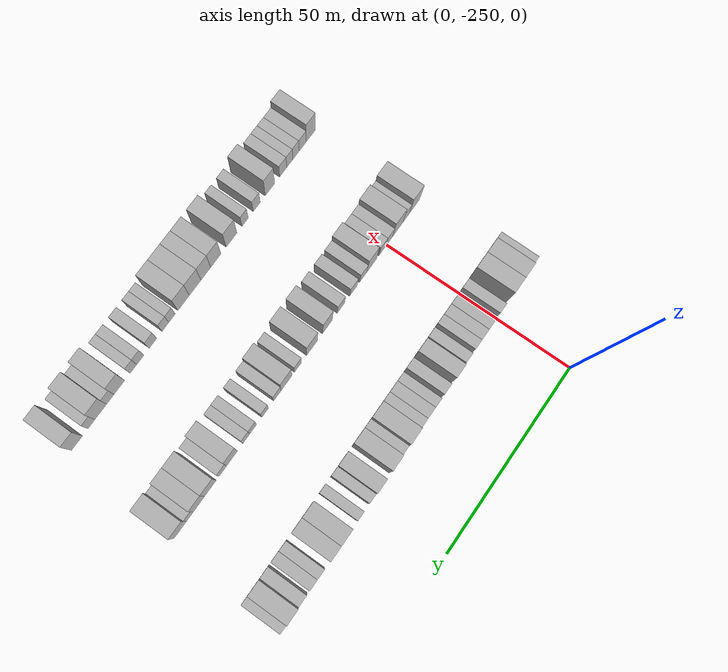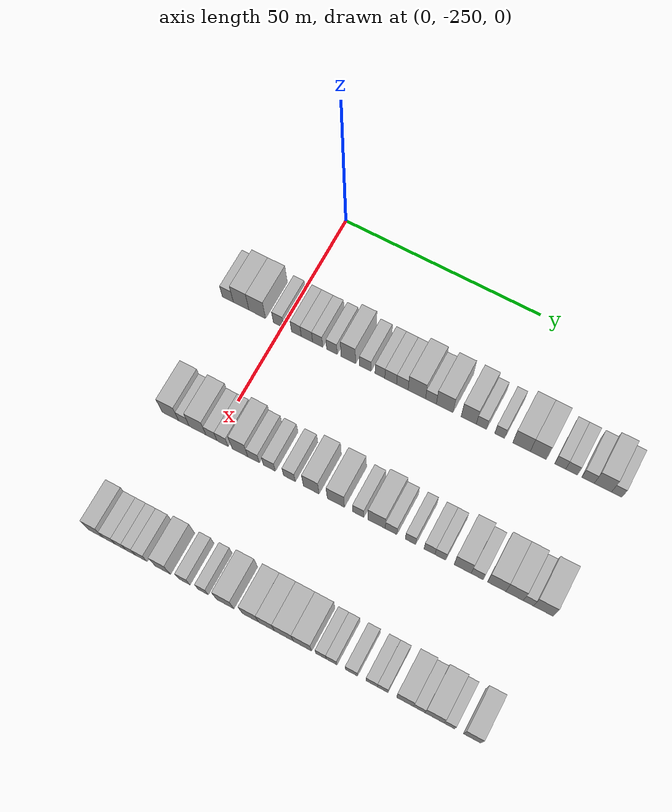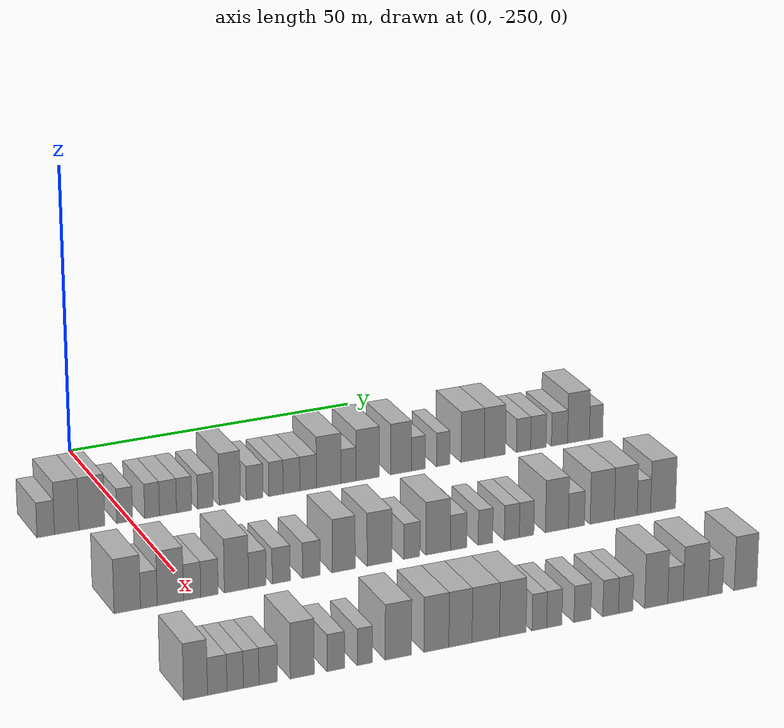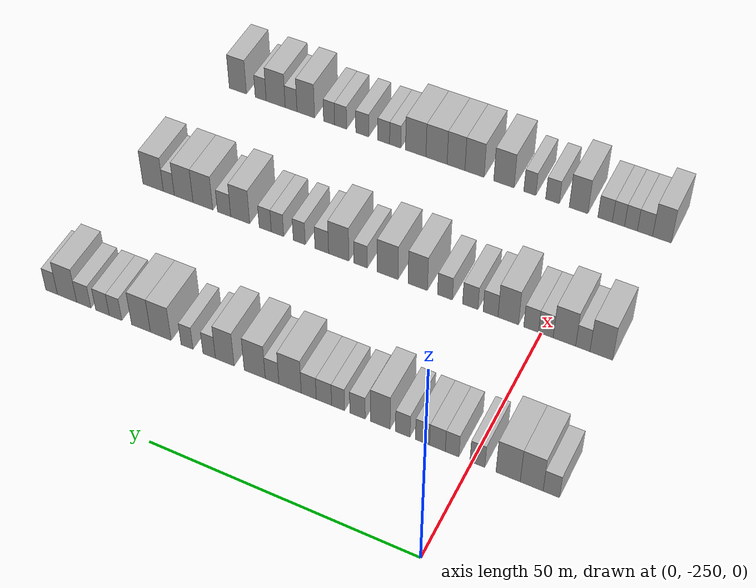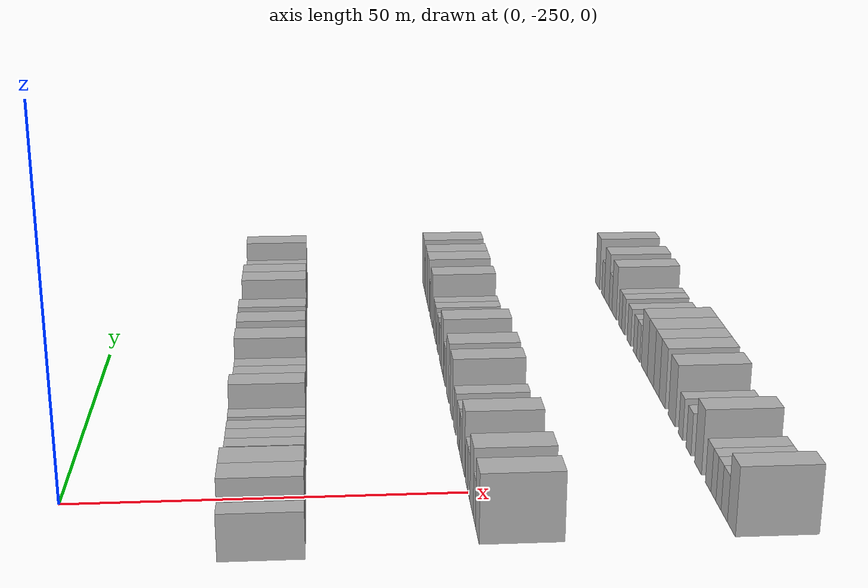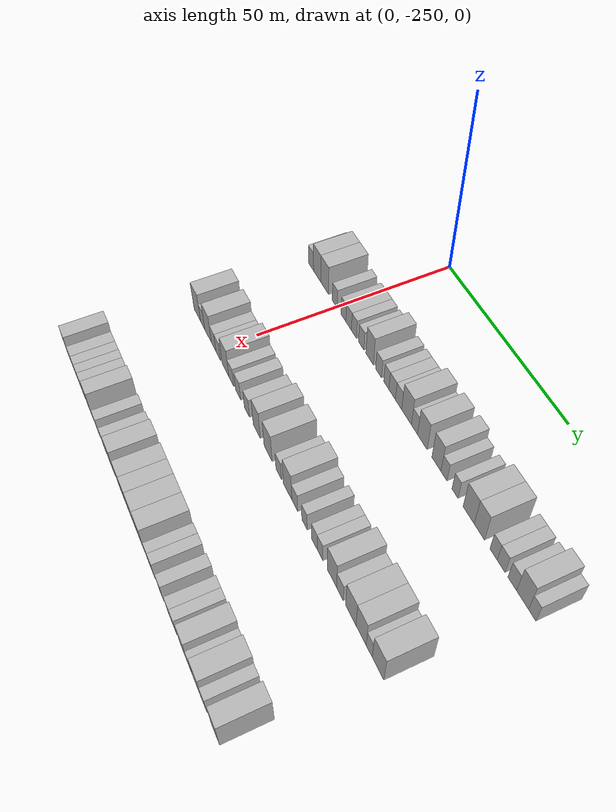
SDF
<sdf version="1.6">
 <world name="default">
  <model name="building_46">
   <static>1</static>
   <pose>25.0000 -264.1485 0 0.000000 0.000000 0.000000</pose>
   <link name="link">
    <pose>0 0 3.00 0 0 0</pose>
    <collision name="collision"><geometry><box><size>10.0000 2.8820 6.0000</size></box></geometry></collision>
    <visual name="visual">
     <cast_shadows>0</cast_shadows>
     <geometry><box><size>10.0000 2.8820 6.0000</size></box></geometry>
     <material>
      <script>
       <uri>model://HANNAS_wall/materials/scripts</uri>
       <uri>model://HANNAS_wall/materials/textures</uri>
       <name>vrc/HANNAS_wall</name>
      </script>
     </material>
    </visual>
   </link>
  </model>
  <model name="building_47">
   <static>1</static>
   <pose>25.0000 -260.6801 0 0.000000 0.000000 0.000000</pose>
   <link name="link">
    <pose>0 0 4.50 0 0 0</pose>
    <collision name="collision"><geometry><box><size>10.0000 4.0547 9.0000</size></box></geometry></collision>
    <visual name="visual">
     <cast_shadows>0</cast_shadows>
     <geometry><box><size>10.0000 4.0547 9.0000</size></box></geometry>
     <material>
      <script>
       <uri>model://HANNAS_wall/materials/scripts</uri>
       <uri>model://HANNAS_wall/materials/textures</uri>
       <name>vrc/HANNAS_wall</name>
      </script>
     </material>
    </visual>
   </link>
  </model>
  <model name="building_48">
   <static>1</static>
   <pose>25.0000 -256.4939 0 0.000000 0.000000 0.000000</pose>
   <link name="link">
    <pose>0 0 4.50 0 0 0</pose>
    <collision name="collision"><geometry><box><size>10.0000 4.3178 9.0000</size></box></geometry></collision>
    <visual name="visual">
     <cast_shadows>0</cast_shadows>
     <geometry><box><size>10.0000 4.3178 9.0000</size></box></geometry>
     <material>
      <script>
       <uri>model://HANNAS_wall/materials/scripts</uri>
       <uri>model://HANNAS_wall/materials/textures</uri>
       <name>vrc/HANNAS_wall</name>
      </script>
     </material>
    </visual>
   </link>
  </model>
  <model name="building_49">
   <static>1</static>
   <pose>25.0000 -250.9897 0 0.000000 0.000000 0.000000</pose>
   <link name="link">
    <pose>0 0 3.00 0 0 0</pose>
    <collision name="collision"><geometry><box><size>10.0000 2.6907 6.0000</size></box></geometry></collision>
    <visual name="visual">
     <cast_shadows>0</cast_shadows>
     <geometry><box><size>10.0000 2.6907 6.0000</size></box></geometry>
     <material>
      <script>
       <uri>model://HANNAS_wall/materials/scripts</uri>
       <uri>model://HANNAS_wall/materials/textures</uri>
       <name>vrc/HANNAS_wall</name>
      </script>
     </material>
    </visual>
   </link>
  </model>
  <model name="building_50">
   <static>1</static>
   <pose>25.0000 -246.4003 0 0.000000 0.000000 0.000000</pose>
   <link name="link">
    <pose>0 0 3.00 0 0 0</pose>
    <collision name="collision"><geometry><box><size>10.0000 2.4881 6.0000</size></box></geometry></collision>
    <visual name="visual">
     <cast_shadows>0</cast_shadows>
     <geometry><box><size>10.0000 2.4881 6.0000</size></box></geometry>
     <material>
      <script>
       <uri>model://HANNAS_wall/materials/scripts</uri>
       <uri>model://HANNAS_wall/materials/textures</uri>
       <name>vrc/HANNAS_wall</name>
      </script>
     </material>
    </visual>
   </link>
  </model>
  <model name="building_51">
   <static>1</static>
   <pose>25.0000 -243.7108 0 0.000000 0.000000 0.000000</pose>
   <link name="link">
    <pose>0 0 3.00 0 0 0</pose>
    <collision name="collision"><geometry><box><size>10.0000 2.8909 6.0000</size></box></geometry></collision>
    <visual name="visual">
     <cast_shadows>0</cast_shadows>
     <geometry><box><size>10.0000 2.8909 6.0000</size></box></geometry>
     <material>
      <script>
       <uri>model://HANNAS_wall/materials/scripts</uri>
       <uri>model://HANNAS_wall/materials/textures</uri>
       <name>vrc/HANNAS_wall</name>
      </script>
     </material>
    </visual>
   </link>
  </model>
  <model name="building_52">
   <static>1</static>
   <pose>25.0000 -240.9700 0 0.000000 0.000000 0.000000</pose>
   <link name="link">
    <pose>0 0 3.00 0 0 0</pose>
    <collision name="collision"><geometry><box><size>10.0000 2.5906 6.0000</size></box></geometry></collision>
    <visual name="visual">
     <cast_shadows>0</cast_shadows>
     <geometry><box><size>10.0000 2.5906 6.0000</size></box></geometry>
     <material>
      <script>
       <uri>model://HANNAS_wall/materials/scripts</uri>
       <uri>model://HANNAS_wall/materials/textures</uri>
       <name>vrc/HANNAS_wall</name>
      </script>
     </material>
    </visual>
   </link>
  </model>
  <model name="building_53">
   <static>1</static>
   <pose>25.0000 -237.3299 0 0.000000 0.000000 0.000000</pose>
   <link name="link">
    <pose>0 0 3.00 0 0 0</pose>
    <collision name="collision"><geometry><box><size>10.0000 2.6897 6.0000</size></box></geometry></collision>
    <visual name="visual">
     <cast_shadows>0</cast_shadows>
     <geometry><box><size>10.0000 2.6897 6.0000</size></box></geometry>
     <material>
      <script>
       <uri>model://HANNAS_wall/materials/scripts</uri>
       <uri>model://HANNAS_wall/materials/textures</uri>
       <name>vrc/HANNAS_wall</name>
      </script>
     </material>
    </visual>
   </link>
  </model>
  <model name="building_54">
   <static>1</static>
   <pose>25.0000 -233.1575 0 0.000000 0.000000 0.000000</pose>
   <link name="link">
    <pose>0 0 4.50 0 0 0</pose>
    <collision name="collision"><geometry><box><size>10.0000 3.6551 9.0000</size></box></geometry></collision>
    <visual name="visual">
     <cast_shadows>0</cast_shadows>
     <geometry><box><size>10.0000 3.6551 9.0000</size></box></geometry>
     <material>
      <script>
       <uri>model://HANNAS_wall/materials/scripts</uri>
       <uri>model://HANNAS_wall/materials/textures</uri>
       <name>vrc/HANNAS_wall</name>
      </script>
     </material>
    </visual>
   </link>
  </model>
  <model name="building_55">
   <static>1</static>
   <pose>25.0000 -228.8805 0 0.000000 0.000000 0.000000</pose>
   <link name="link">
    <pose>0 0 3.00 0 0 0</pose>
    <collision name="collision"><geometry><box><size>10.0000 2.8989 6.0000</size></box></geometry></collision>
    <visual name="visual">
     <cast_shadows>0</cast_shadows>
     <geometry><box><size>10.0000 2.8989 6.0000</size></box></geometry>
     <material>
      <script>
       <uri>model://HANNAS_wall/materials/scripts</uri>
       <uri>model://HANNAS_wall/materials/textures</uri>
       <name>vrc/HANNAS_wall</name>
      </script>
     </material>
    </visual>
   </link>
  </model>
  <model name="building_56">
   <static>1</static>
   <pose>25.0000 -225.2033 0 0.000000 0.000000 0.000000</pose>
   <link name="link">
    <pose>0 0 3.00 0 0 0</pose>
    <collision name="collision"><geometry><box><size>10.0000 2.4555 6.0000</size></box></geometry></collision>
    <visual name="visual">
     <cast_shadows>0</cast_shadows>
     <geometry><box><size>10.0000 2.4555 6.0000</size></box></geometry>
     <material>
      <script>
       <uri>model://HANNAS_wall/materials/scripts</uri>
       <uri>model://HANNAS_wall/materials/textures</uri>
       <name>vrc/HANNAS_wall</name>
      </script>
     </material>
    </visual>
   </link>
  </model>
  <model name="building_57">
   <static>1</static>
   <pose>25.0000 -222.5029 0 0.000000 0.000000 0.000000</pose>
   <link name="link">
    <pose>0 0 3.00 0 0 0</pose>
    <collision name="collision"><geometry><box><size>10.0000 2.9454 6.0000</size></box></geometry></collision>
    <visual name="visual">
     <cast_shadows>0</cast_shadows>
     <geometry><box><size>10.0000 2.9454 6.0000</size></box></geometry>
     <material>
      <script>
       <uri>model://HANNAS_wall/materials/scripts</uri>
       <uri>model://HANNAS_wall/materials/textures</uri>
       <name>vrc/HANNAS_wall</name>
      </script>
     </material>
    </visual>
   </link>
  </model>
  <model name="building_58">
   <static>1</static>
   <pose>25.0000 -219.5886 0 0.000000 0.000000 0.000000</pose>
   <link name="link">
    <pose>0 0 3.00 0 0 0</pose>
    <collision name="collision"><geometry><box><size>10.0000 2.8831 6.0000</size></box></geometry></collision>
    <visual name="visual">
     <cast_shadows>0</cast_shadows>
     <geometry><box><size>10.0000 2.8831 6.0000</size></box></geometry>
     <material>
      <script>
       <uri>model://HANNAS_wall/materials/scripts</uri>
       <uri>model://HANNAS_wall/materials/textures</uri>
       <name>vrc/HANNAS_wall</name>
      </script>
     </material>
    </visual>
   </link>
  </model>
  <model name="building_59">
   <static>1</static>
   <pose>25.0000 -215.9863 0 0.000000 0.000000 0.000000</pose>
   <link name="link">
    <pose>0 0 4.50 0 0 0</pose>
    <collision name="collision"><geometry><box><size>10.0000 4.3215 9.0000</size></box></geometry></collision>
    <visual name="visual">
     <cast_shadows>0</cast_shadows>
     <geometry><box><size>10.0000 4.3215 9.0000</size></box></geometry>
     <material>
      <script>
       <uri>model://HANNAS_wall/materials/scripts</uri>
       <uri>model://HANNAS_wall/materials/textures</uri>
       <name>vrc/HANNAS_wall</name>
      </script>
     </material>
    </visual>
   </link>
  </model>
  <model name="building_60">
   <static>1</static>
   <pose>25.0000 -212.4923 0 0.000000 0.000000 0.000000</pose>
   <link name="link">
    <pose>0 0 3.00 0 0 0</pose>
    <collision name="collision"><geometry><box><size>10.0000 2.6666 6.0000</size></box></geometry></collision>
    <visual name="visual">
     <cast_shadows>0</cast_shadows>
     <geometry><box><size>10.0000 2.6666 6.0000</size></box></geometry>
     <material>
      <script>
       <uri>model://HANNAS_wall/materials/scripts</uri>
       <uri>model://HANNAS_wall/materials/textures</uri>
       <name>vrc/HANNAS_wall</name>
      </script>
     </material>
    </visual>
   </link>
  </model>
  <model name="building_61">
   <static>1</static>
   <pose>25.0000 -209.0962 0 0.000000 0.000000 0.000000</pose>
   <link name="link">
    <pose>0 0 4.50 0 0 0</pose>
    <collision name="collision"><geometry><box><size>10.0000 4.1255 9.0000</size></box></geometry></collision>
    <visual name="visual">
     <cast_shadows>0</cast_shadows>
     <geometry><box><size>10.0000 4.1255 9.0000</size></box></geometry>
     <material>
      <script>
       <uri>model://HANNAS_wall/materials/scripts</uri>
       <uri>model://HANNAS_wall/materials/textures</uri>
       <name>vrc/HANNAS_wall</name>
      </script>
     </material>
    </visual>
   </link>
  </model>
  <model name="building_62">
   <static>1</static>
   <pose>25.0000 -203.1791 0 0.000000 0.000000 0.000000</pose>
   <link name="link">
    <pose>0 0 4.50 0 0 0</pose>
    <collision name="collision"><geometry><box><size>10.0000 3.7088 9.0000</size></box></geometry></collision>
    <visual name="visual">
     <cast_shadows>0</cast_shadows>
     <geometry><box><size>10.0000 3.7088 9.0000</size></box></geometry>
     <material>
      <script>
       <uri>model://HANNAS_wall/materials/scripts</uri>
       <uri>model://HANNAS_wall/materials/textures</uri>
       <name>vrc/HANNAS_wall</name>
      </script>
     </material>
    </visual>
   </link>
  </model>
  <model name="building_63">
   <static>1</static>
   <pose>25.0000 -200.0745 0 0.000000 0.000000 0.000000</pose>
   <link name="link">
    <pose>0 0 3.00 0 0 0</pose>
    <collision name="collision"><geometry><box><size>10.0000 2.5003 6.0000</size></box></geometry></collision>
    <visual name="visual">
     <cast_shadows>0</cast_shadows>
     <geometry><box><size>10.0000 2.5003 6.0000</size></box></geometry>
     <material>
      <script>
       <uri>model://HANNAS_wall/materials/scripts</uri>
       <uri>model://HANNAS_wall/materials/textures</uri>
       <name>vrc/HANNAS_wall</name>
      </script>
     </material>
    </visual>
   </link>
  </model>
  <model name="building_64">
   <static>1</static>
   <pose>25.0000 -195.6227 0 0.000000 0.000000 0.000000</pose>
   <link name="link">
    <pose>0 0 3.00 0 0 0</pose>
    <collision name="collision"><geometry><box><size>10.0000 2.4034 6.0000</size></box></geometry></collision>
    <visual name="visual">
     <cast_shadows>0</cast_shadows>
     <geometry><box><size>10.0000 2.4034 6.0000</size></box></geometry>
     <material>
      <script>
       <uri>model://HANNAS_wall/materials/scripts</uri>
       <uri>model://HANNAS_wall/materials/textures</uri>
       <name>vrc/HANNAS_wall</name>
      </script>
     </material>
    </visual>
   </link>
  </model>
  <model name="building_65">
   <static>1</static>
   <pose>25.0000 -190.3028 0 0.000000 0.000000 0.000000</pose>
   <link name="link">
    <pose>0 0 4.50 0 0 0</pose>
    <collision name="collision"><geometry><box><size>10.0000 4.2364 9.0000</size></box></geometry></collision>
    <visual name="visual">
     <cast_shadows>0</cast_shadows>
     <geometry><box><size>10.0000 4.2364 9.0000</size></box></geometry>
     <material>
      <script>
       <uri>model://HANNAS_wall/materials/scripts</uri>
       <uri>model://HANNAS_wall/materials/textures</uri>
       <name>vrc/HANNAS_wall</name>
      </script>
     </material>
    </visual>
   </link>
  </model>
  <model name="building_66">
   <static>1</static>
   <pose>25.0000 -186.2485 0 0.000000 0.000000 0.000000</pose>
   <link name="link">
    <pose>0 0 4.50 0 0 0</pose>
    <collision name="collision"><geometry><box><size>10.0000 3.8721 9.0000</size></box></geometry></collision>
    <visual name="visual">
     <cast_shadows>0</cast_shadows>
     <geometry><box><size>10.0000 3.8721 9.0000</size></box></geometry>
     <material>
      <script>
       <uri>model://HANNAS_wall/materials/scripts</uri>
       <uri>model://HANNAS_wall/materials/textures</uri>
       <name>vrc/HANNAS_wall</name>
      </script>
     </material>
    </visual>
   </link>
  </model>
  <model name="building_67">
   <static>1</static>
   <pose>25.0000 -181.0023 0 0.000000 0.000000 0.000000</pose>
   <link name="link">
    <pose>0 0 3.00 0 0 0</pose>
    <collision name="collision"><geometry><box><size>10.0000 2.6203 6.0000</size></box></geometry></collision>
    <visual name="visual">
     <cast_shadows>0</cast_shadows>
     <geometry><box><size>10.0000 2.6203 6.0000</size></box></geometry>
     <material>
      <script>
       <uri>model://HANNAS_wall/materials/scripts</uri>
       <uri>model://HANNAS_wall/materials/textures</uri>
       <name>vrc/HANNAS_wall</name>
      </script>
     </material>
    </visual>
   </link>
  </model>
  <model name="building_68">
   <static>1</static>
   <pose>25.0000 -178.2795 0 0.000000 0.000000 0.000000</pose>
   <link name="link">
    <pose>0 0 3.00 0 0 0</pose>
    <collision name="collision"><geometry><box><size>10.0000 2.8252 6.0000</size></box></geometry></collision>
    <visual name="visual">
     <cast_shadows>0</cast_shadows>
     <geometry><box><size>10.0000 2.8252 6.0000</size></box></geometry>
     <material>
      <script>
       <uri>model://HANNAS_wall/materials/scripts</uri>
       <uri>model://HANNAS_wall/materials/textures</uri>
       <name>vrc/HANNAS_wall</name>
      </script>
     </material>
    </visual>
   </link>
  </model>
  <model name="building_69">
   <static>1</static>
   <pose>25.0000 -174.3750 0 0.000000 0.000000 0.000000</pose>
   <link name="link">
    <pose>0 0 3.00 0 0 0</pose>
    <collision name="collision"><geometry><box><size>10.0000 2.9838 6.0000</size></box></geometry></collision>
    <visual name="visual">
     <cast_shadows>0</cast_shadows>
     <geometry><box><size>10.0000 2.9838 6.0000</size></box></geometry>
     <material>
      <script>
       <uri>model://HANNAS_wall/materials/scripts</uri>
       <uri>model://HANNAS_wall/materials/textures</uri>
       <name>vrc/HANNAS_wall</name>
      </script>
     </material>
    </visual>
   </link>
  </model>
  <model name="building_70">
   <static>1</static>
   <pose>25.0000 -170.8474 0 0.000000 0.000000 0.000000</pose>
   <link name="link">
    <pose>0 0 4.50 0 0 0</pose>
    <collision name="collision"><geometry><box><size>10.0000 4.0714 9.0000</size></box></geometry></collision>
    <visual name="visual">
     <cast_shadows>0</cast_shadows>
     <geometry><box><size>10.0000 4.0714 9.0000</size></box></geometry>
     <material>
      <script>
       <uri>model://HANNAS_wall/materials/scripts</uri>
       <uri>model://HANNAS_wall/materials/textures</uri>
       <name>vrc/HANNAS_wall</name>
      </script>
     </material>
    </visual>
   </link>
  </model>
  <model name="building_71">
   <static>1</static>
   <pose>25.0000 -167.5744 0 0.000000 0.000000 0.000000</pose>
   <link name="link">
    <pose>0 0 3.00 0 0 0</pose>
    <collision name="collision"><geometry><box><size>10.0000 2.4747 6.0000</size></box></geometry></collision>
    <visual name="visual">
     <cast_shadows>0</cast_shadows>
     <geometry><box><size>10.0000 2.4747 6.0000</size></box></geometry>
     <material>
      <script>
       <uri>model://HANNAS_wall/materials/scripts</uri>
       <uri>model://HANNAS_wall/materials/textures</uri>
       <name>vrc/HANNAS_wall</name>
      </script>
     </material>
    </visual>
   </link>
  </model>
  <model name="building_279">
   <static>1</static>
   <pose>55.0000 -261.2623 0 0.000000 0.000000 0.000000</pose>
   <link name="link">
    <pose>0 0 4.50 0 0 0</pose>
    <collision name="collision"><geometry><box><size>10.0000 4.2170 9.0000</size></box></geometry></collision>
    <visual name="visual">
     <cast_shadows>0</cast_shadows>
     <geometry><box><size>10.0000 4.2170 9.0000</size></box></geometry>
     <material>
      <script>
       <uri>model://HANNAS_wall/materials/scripts</uri>
       <uri>model://HANNAS_wall/materials/textures</uri>
       <name>vrc/HANNAS_wall</name>
      </script>
     </material>
    </visual>
   </link>
  </model>
  <model name="building_280">
   <static>1</static>
   <pose>55.0000 -257.8210 0 0.000000 0.000000 0.000000</pose>
   <link name="link">
    <pose>0 0 3.00 0 0 0</pose>
    <collision name="collision"><geometry><box><size>10.0000 2.6657 6.0000</size></box></geometry></collision>
    <visual name="visual">
     <cast_shadows>0</cast_shadows>
     <geometry><box><size>10.0000 2.6657 6.0000</size></box></geometry>
     <material>
      <script>
       <uri>model://HANNAS_wall/materials/scripts</uri>
       <uri>model://HANNAS_wall/materials/textures</uri>
       <name>vrc/HANNAS_wall</name>
      </script>
     </material>
    </visual>
   </link>
  </model>
  <model name="building_281">
   <static>1</static>
   <pose>55.0000 -254.3744 0 0.000000 0.000000 0.000000</pose>
   <link name="link">
    <pose>0 0 4.50 0 0 0</pose>
    <collision name="collision"><geometry><box><size>10.0000 4.2275 9.0000</size></box></geometry></collision>
    <visual name="visual">
     <cast_shadows>0</cast_shadows>
     <geometry><box><size>10.0000 4.2275 9.0000</size></box></geometry>
     <material>
      <script>
       <uri>model://HANNAS_wall/materials/scripts</uri>
       <uri>model://HANNAS_wall/materials/textures</uri>
       <name>vrc/HANNAS_wall</name>
      </script>
     </material>
    </visual>
   </link>
  </model>
  <model name="building_282">
   <static>1</static>
   <pose>55.0000 -250.8717 0 0.000000 0.000000 0.000000</pose>
   <link name="link">
    <pose>0 0 3.00 0 0 0</pose>
    <collision name="collision"><geometry><box><size>10.0000 2.7778 6.0000</size></box></geometry></collision>
    <visual name="visual">
     <cast_shadows>0</cast_shadows>
     <geometry><box><size>10.0000 2.7778 6.0000</size></box></geometry>
     <material>
      <script>
       <uri>model://HANNAS_wall/materials/scripts</uri>
       <uri>model://HANNAS_wall/materials/textures</uri>
       <name>vrc/HANNAS_wall</name>
      </script>
     </material>
    </visual>
   </link>
  </model>
  <model name="building_283">
   <static>1</static>
   <pose>55.0000 -248.0734 0 0.000000 0.000000 0.000000</pose>
   <link name="link">
    <pose>0 0 3.00 0 0 0</pose>
    <collision name="collision"><geometry><box><size>10.0000 2.8190 6.0000</size></box></geometry></collision>
    <visual name="visual">
     <cast_shadows>0</cast_shadows>
     <geometry><box><size>10.0000 2.8190 6.0000</size></box></geometry>
     <material>
      <script>
       <uri>model://HANNAS_wall/materials/scripts</uri>
       <uri>model://HANNAS_wall/materials/textures</uri>
       <name>vrc/HANNAS_wall</name>
      </script>
     </material>
    </visual>
   </link>
  </model>
  <model name="building_284">
   <static>1</static>
   <pose>55.0000 -243.6945 0 0.000000 0.000000 0.000000</pose>
   <link name="link">
    <pose>0 0 4.50 0 0 0</pose>
    <collision name="collision"><geometry><box><size>10.0000 3.9387 9.0000</size></box></geometry></collision>
    <visual name="visual">
     <cast_shadows>0</cast_shadows>
     <geometry><box><size>10.0000 3.9387 9.0000</size></box></geometry>
     <material>
      <script>
       <uri>model://HANNAS_wall/materials/scripts</uri>
       <uri>model://HANNAS_wall/materials/textures</uri>
       <name>vrc/HANNAS_wall</name>
      </script>
     </material>
    </visual>
   </link>
  </model>
  <model name="building_285">
   <static>1</static>
   <pose>55.0000 -240.2869 0 0.000000 0.000000 0.000000</pose>
   <link name="link">
    <pose>0 0 3.00 0 0 0</pose>
    <collision name="collision"><geometry><box><size>10.0000 2.8766 6.0000</size></box></geometry></collision>
    <visual name="visual">
     <cast_shadows>0</cast_shadows>
     <geometry><box><size>10.0000 2.8766 6.0000</size></box></geometry>
     <material>
      <script>
       <uri>model://HANNAS_wall/materials/scripts</uri>
       <uri>model://HANNAS_wall/materials/textures</uri>
       <name>vrc/HANNAS_wall</name>
      </script>
     </material>
    </visual>
   </link>
  </model>
  <model name="building_286">
   <static>1</static>
   <pose>55.0000 -236.3550 0 0.000000 0.000000 0.000000</pose>
   <link name="link">
    <pose>0 0 3.00 0 0 0</pose>
    <collision name="collision"><geometry><box><size>10.0000 2.9872 6.0000</size></box></geometry></collision>
    <visual name="visual">
     <cast_shadows>0</cast_shadows>
     <geometry><box><size>10.0000 2.9872 6.0000</size></box></geometry>
     <material>
      <script>
       <uri>model://HANNAS_wall/materials/scripts</uri>
       <uri>model://HANNAS_wall/materials/textures</uri>
       <name>vrc/HANNAS_wall</name>
      </script>
     </material>
    </visual>
   </link>
  </model>
  <model name="building_287">
   <static>1</static>
   <pose>55.0000 -231.3981 0 0.000000 0.000000 0.000000</pose>
   <link name="link">
    <pose>0 0 3.00 0 0 0</pose>
    <collision name="collision"><geometry><box><size>10.0000 2.9266 6.0000</size></box></geometry></collision>
    <visual name="visual">
     <cast_shadows>0</cast_shadows>
     <geometry><box><size>10.0000 2.9266 6.0000</size></box></geometry>
     <material>
      <script>
       <uri>model://HANNAS_wall/materials/scripts</uri>
       <uri>model://HANNAS_wall/materials/textures</uri>
       <name>vrc/HANNAS_wall</name>
      </script>
     </material>
    </visual>
   </link>
  </model>
  <model name="building_288">
   <static>1</static>
   <pose>55.0000 -226.0126 0 0.000000 0.000000 0.000000</pose>
   <link name="link">
    <pose>0 0 4.50 0 0 0</pose>
    <collision name="collision"><geometry><box><size>10.0000 3.8443 9.0000</size></box></geometry></collision>
    <visual name="visual">
     <cast_shadows>0</cast_shadows>
     <geometry><box><size>10.0000 3.8443 9.0000</size></box></geometry>
     <material>
      <script>
       <uri>model://HANNAS_wall/materials/scripts</uri>
       <uri>model://HANNAS_wall/materials/textures</uri>
       <name>vrc/HANNAS_wall</name>
      </script>
     </material>
    </visual>
   </link>
  </model>
  <model name="building_289">
   <static>1</static>
   <pose>55.0000 -219.9965 0 0.000000 0.000000 0.000000</pose>
   <link name="link">
    <pose>0 0 4.50 0 0 0</pose>
    <collision name="collision"><geometry><box><size>10.0000 4.1879 9.0000</size></box></geometry></collision>
    <visual name="visual">
     <cast_shadows>0</cast_shadows>
     <geometry><box><size>10.0000 4.1879 9.0000</size></box></geometry>
     <material>
      <script>
       <uri>model://HANNAS_wall/materials/scripts</uri>
       <uri>model://HANNAS_wall/materials/textures</uri>
       <name>vrc/HANNAS_wall</name>
      </script>
     </material>
    </visual>
   </link>
  </model>
  <model name="building_290">
   <static>1</static>
   <pose>55.0000 -214.5371 0 0.000000 0.000000 0.000000</pose>
   <link name="link">
    <pose>0 0 3.00 0 0 0</pose>
    <collision name="collision"><geometry><box><size>10.0000 2.7311 6.0000</size></box></geometry></collision>
    <visual name="visual">
     <cast_shadows>0</cast_shadows>
     <geometry><box><size>10.0000 2.7311 6.0000</size></box></geometry>
     <material>
      <script>
       <uri>model://HANNAS_wall/materials/scripts</uri>
       <uri>model://HANNAS_wall/materials/textures</uri>
       <name>vrc/HANNAS_wall</name>
      </script>
     </material>
    </visual>
   </link>
  </model>
  <model name="building_291">
   <static>1</static>
   <pose>55.0000 -210.0919 0 0.000000 0.000000 0.000000</pose>
   <link name="link">
    <pose>0 0 4.50 0 0 0</pose>
    <collision name="collision"><geometry><box><size>10.0000 4.1593 9.0000</size></box></geometry></collision>
    <visual name="visual">
     <cast_shadows>0</cast_shadows>
     <geometry><box><size>10.0000 4.1593 9.0000</size></box></geometry>
     <material>
      <script>
       <uri>model://HANNAS_wall/materials/scripts</uri>
       <uri>model://HANNAS_wall/materials/textures</uri>
       <name>vrc/HANNAS_wall</name>
      </script>
     </material>
    </visual>
   </link>
  </model>
  <model name="building_292">
   <static>1</static>
   <pose>55.0000 -206.6073 0 0.000000 0.000000 0.000000</pose>
   <link name="link">
    <pose>0 0 3.00 0 0 0</pose>
    <collision name="collision"><geometry><box><size>10.0000 2.8098 6.0000</size></box></geometry></collision>
    <visual name="visual">
     <cast_shadows>0</cast_shadows>
     <geometry><box><size>10.0000 2.8098 6.0000</size></box></geometry>
     <material>
      <script>
       <uri>model://HANNAS_wall/materials/scripts</uri>
       <uri>model://HANNAS_wall/materials/textures</uri>
       <name>vrc/HANNAS_wall</name>
      </script>
     </material>
    </visual>
   </link>
  </model>
  <model name="building_293">
   <static>1</static>
   <pose>55.0000 -201.9544 0 0.000000 0.000000 0.000000</pose>
   <link name="link">
    <pose>0 0 3.00 0 0 0</pose>
    <collision name="collision"><geometry><box><size>10.0000 2.4960 6.0000</size></box></geometry></collision>
    <visual name="visual">
     <cast_shadows>0</cast_shadows>
     <geometry><box><size>10.0000 2.4960 6.0000</size></box></geometry>
     <material>
      <script>
       <uri>model://HANNAS_wall/materials/scripts</uri>
       <uri>model://HANNAS_wall/materials/textures</uri>
       <name>vrc/HANNAS_wall</name>
      </script>
     </material>
    </visual>
   </link>
  </model>
  <model name="building_294">
   <static>1</static>
   <pose>55.0000 -197.4063 0 0.000000 0.000000 0.000000</pose>
   <link name="link">
    <pose>0 0 3.00 0 0 0</pose>
    <collision name="collision"><geometry><box><size>10.0000 2.6002 6.0000</size></box></geometry></collision>
    <visual name="visual">
     <cast_shadows>0</cast_shadows>
     <geometry><box><size>10.0000 2.6002 6.0000</size></box></geometry>
     <material>
      <script>
       <uri>model://HANNAS_wall/materials/scripts</uri>
       <uri>model://HANNAS_wall/materials/textures</uri>
       <name>vrc/HANNAS_wall</name>
      </script>
     </material>
    </visual>
   </link>
  </model>
  <model name="building_295">
   <static>1</static>
   <pose>55.0000 -194.8317 0 0.000000 0.000000 0.000000</pose>
   <link name="link">
    <pose>0 0 3.00 0 0 0</pose>
    <collision name="collision"><geometry><box><size>10.0000 2.5490 6.0000</size></box></geometry></collision>
    <visual name="visual">
     <cast_shadows>0</cast_shadows>
     <geometry><box><size>10.0000 2.5490 6.0000</size></box></geometry>
     <material>
      <script>
       <uri>model://HANNAS_wall/materials/scripts</uri>
       <uri>model://HANNAS_wall/materials/textures</uri>
       <name>vrc/HANNAS_wall</name>
      </script>
     </material>
    </visual>
   </link>
  </model>
  <model name="building_296">
   <static>1</static>
   <pose>55.0000 -189.5440 0 0.000000 0.000000 0.000000</pose>
   <link name="link">
    <pose>0 0 4.50 0 0 0</pose>
    <collision name="collision"><geometry><box><size>10.0000 4.0264 9.0000</size></box></geometry></collision>
    <visual name="visual">
     <cast_shadows>0</cast_shadows>
     <geometry><box><size>10.0000 4.0264 9.0000</size></box></geometry>
     <material>
      <script>
       <uri>model://HANNAS_wall/materials/scripts</uri>
       <uri>model://HANNAS_wall/materials/textures</uri>
       <name>vrc/HANNAS_wall</name>
      </script>
     </material>
    </visual>
   </link>
  </model>
  <model name="building_297">
   <static>1</static>
   <pose>55.0000 -186.1114 0 0.000000 0.000000 0.000000</pose>
   <link name="link">
    <pose>0 0 3.00 0 0 0</pose>
    <collision name="collision"><geometry><box><size>10.0000 2.8388 6.0000</size></box></geometry></collision>
    <visual name="visual">
     <cast_shadows>0</cast_shadows>
     <geometry><box><size>10.0000 2.8388 6.0000</size></box></geometry>
     <material>
      <script>
       <uri>model://HANNAS_wall/materials/scripts</uri>
       <uri>model://HANNAS_wall/materials/textures</uri>
       <name>vrc/HANNAS_wall</name>
      </script>
     </material>
    </visual>
   </link>
  </model>
  <model name="building_298">
   <static>1</static>
   <pose>55.0000 -181.5488 0 0.000000 0.000000 0.000000</pose>
   <link name="link">
    <pose>0 0 4.50 0 0 0</pose>
    <collision name="collision"><geometry><box><size>10.0000 4.2865 9.0000</size></box></geometry></collision>
    <visual name="visual">
     <cast_shadows>0</cast_shadows>
     <geometry><box><size>10.0000 4.2865 9.0000</size></box></geometry>
     <material>
      <script>
       <uri>model://HANNAS_wall/materials/scripts</uri>
       <uri>model://HANNAS_wall/materials/textures</uri>
       <name>vrc/HANNAS_wall</name>
      </script>
     </material>
    </visual>
   </link>
  </model>
  <model name="building_299">
   <static>1</static>
   <pose>55.0000 -177.3813 0 0.000000 0.000000 0.000000</pose>
   <link name="link">
    <pose>0 0 4.50 0 0 0</pose>
    <collision name="collision"><geometry><box><size>10.0000 4.0484 9.0000</size></box></geometry></collision>
    <visual name="visual">
     <cast_shadows>0</cast_shadows>
     <geometry><box><size>10.0000 4.0484 9.0000</size></box></geometry>
     <material>
      <script>
       <uri>model://HANNAS_wall/materials/scripts</uri>
       <uri>model://HANNAS_wall/materials/textures</uri>
       <name>vrc/HANNAS_wall</name>
      </script>
     </material>
    </visual>
   </link>
  </model>
  <model name="building_300">
   <static>1</static>
   <pose>55.0000 -174.1530 0 0.000000 0.000000 0.000000</pose>
   <link name="link">
    <pose>0 0 3.00 0 0 0</pose>
    <collision name="collision"><geometry><box><size>10.0000 2.4083 6.0000</size></box></geometry></collision>
    <visual name="visual">
     <cast_shadows>0</cast_shadows>
     <geometry><box><size>10.0000 2.4083 6.0000</size></box></geometry>
     <material>
      <script>
       <uri>model://HANNAS_wall/materials/scripts</uri>
       <uri>model://HANNAS_wall/materials/textures</uri>
       <name>vrc/HANNAS_wall</name>
      </script>
     </material>
    </visual>
   </link>
  </model>
  <model name="building_301">
   <static>1</static>
   <pose>55.0000 -170.7024 0 0.000000 0.000000 0.000000</pose>
   <link name="link">
    <pose>0 0 4.50 0 0 0</pose>
    <collision name="collision"><geometry><box><size>10.0000 4.4929 9.0000</size></box></geometry></collision>
    <visual name="visual">
     <cast_shadows>0</cast_shadows>
     <geometry><box><size>10.0000 4.4929 9.0000</size></box></geometry>
     <material>
      <script>
       <uri>model://HANNAS_wall/materials/scripts</uri>
       <uri>model://HANNAS_wall/materials/textures</uri>
       <name>vrc/HANNAS_wall</name>
      </script>
     </material>
    </visual>
   </link>
  </model>
  <model name="building_526">
   <static>1</static>
   <pose>85.0000 -261.6350 0 0.000000 0.000000 0.000000</pose>
   <link name="link">
    <pose>0 0 4.50 0 0 0</pose>
    <collision name="collision"><geometry><box><size>10.0000 3.6424 9.0000</size></box></geometry></collision>
    <visual name="visual">
     <cast_shadows>0</cast_shadows>
     <geometry><box><size>10.0000 3.6424 9.0000</size></box></geometry>
     <material>
      <script>
       <uri>model://HANNAS_wall/materials/scripts</uri>
       <uri>model://HANNAS_wall/materials/textures</uri>
       <name>vrc/HANNAS_wall</name>
      </script>
     </material>
    </visual>
   </link>
  </model>
  <model name="building_527">
   <static>1</static>
   <pose>85.0000 -258.3211 0 0.000000 0.000000 0.000000</pose>
   <link name="link">
    <pose>0 0 3.00 0 0 0</pose>
    <collision name="collision"><geometry><box><size>10.0000 2.9855 6.0000</size></box></geometry></collision>
    <visual name="visual">
     <cast_shadows>0</cast_shadows>
     <geometry><box><size>10.0000 2.9855 6.0000</size></box></geometry>
     <material>
      <script>
       <uri>model://HANNAS_wall/materials/scripts</uri>
       <uri>model://HANNAS_wall/materials/textures</uri>
       <name>vrc/HANNAS_wall</name>
      </script>
     </material>
    </visual>
   </link>
  </model>
  <model name="building_528">
   <static>1</static>
   <pose>85.0000 -255.5676 0 0.000000 0.000000 0.000000</pose>
   <link name="link">
    <pose>0 0 3.00 0 0 0</pose>
    <collision name="collision"><geometry><box><size>10.0000 2.5214 6.0000</size></box></geometry></collision>
    <visual name="visual">
     <cast_shadows>0</cast_shadows>
     <geometry><box><size>10.0000 2.5214 6.0000</size></box></geometry>
     <material>
      <script>
       <uri>model://HANNAS_wall/materials/scripts</uri>
       <uri>model://HANNAS_wall/materials/textures</uri>
       <name>vrc/HANNAS_wall</name>
      </script>
     </material>
    </visual>
   </link>
  </model>
  <model name="building_529">
   <static>1</static>
   <pose>85.0000 -253.1015 0 0.000000 0.000000 0.000000</pose>
   <link name="link">
    <pose>0 0 3.00 0 0 0</pose>
    <collision name="collision"><geometry><box><size>10.0000 2.4109 6.0000</size></box></geometry></collision>
    <visual name="visual">
     <cast_shadows>0</cast_shadows>
     <geometry><box><size>10.0000 2.4109 6.0000</size></box></geometry>
     <material>
      <script>
       <uri>model://HANNAS_wall/materials/scripts</uri>
       <uri>model://HANNAS_wall/materials/textures</uri>
       <name>vrc/HANNAS_wall</name>
      </script>
     </material>
    </visual>
   </link>
  </model>
  <model name="building_530">
   <static>1</static>
   <pose>85.0000 -250.4654 0 0.000000 0.000000 0.000000</pose>
   <link name="link">
    <pose>0 0 3.00 0 0 0</pose>
    <collision name="collision"><geometry><box><size>10.0000 2.8612 6.0000</size></box></geometry></collision>
    <visual name="visual">
     <cast_shadows>0</cast_shadows>
     <geometry><box><size>10.0000 2.8612 6.0000</size></box></geometry>
     <material>
      <script>
       <uri>model://HANNAS_wall/materials/scripts</uri>
       <uri>model://HANNAS_wall/materials/textures</uri>
       <name>vrc/HANNAS_wall</name>
      </script>
     </material>
    </visual>
   </link>
  </model>
  <model name="building_531">
   <static>1</static>
   <pose>85.0000 -245.1630 0 0.000000 0.000000 0.000000</pose>
   <link name="link">
    <pose>0 0 4.50 0 0 0</pose>
    <collision name="collision"><geometry><box><size>10.0000 3.7437 9.0000</size></box></geometry></collision>
    <visual name="visual">
     <cast_shadows>0</cast_shadows>
     <geometry><box><size>10.0000 3.7437 9.0000</size></box></geometry>
     <material>
      <script>
       <uri>model://HANNAS_wall/materials/scripts</uri>
       <uri>model://HANNAS_wall/materials/textures</uri>
       <name>vrc/HANNAS_wall</name>
      </script>
     </material>
    </visual>
   </link>
  </model>
  <model name="building_532">
   <static>1</static>
   <pose>85.0000 -239.9127 0 0.000000 0.000000 0.000000</pose>
   <link name="link">
    <pose>0 0 3.00 0 0 0</pose>
    <collision name="collision"><geometry><box><size>10.0000 2.7568 6.0000</size></box></geometry></collision>
    <visual name="visual">
     <cast_shadows>0</cast_shadows>
     <geometry><box><size>10.0000 2.7568 6.0000</size></box></geometry>
     <material>
      <script>
       <uri>model://HANNAS_wall/materials/scripts</uri>
       <uri>model://HANNAS_wall/materials/textures</uri>
       <name>vrc/HANNAS_wall</name>
      </script>
     </material>
    </visual>
   </link>
  </model>
  <model name="building_533">
   <static>1</static>
   <pose>85.0000 -235.3063 0 0.000000 0.000000 0.000000</pose>
   <link name="link">
    <pose>0 0 3.00 0 0 0</pose>
    <collision name="collision"><geometry><box><size>10.0000 2.4562 6.0000</size></box></geometry></collision>
    <visual name="visual">
     <cast_shadows>0</cast_shadows>
     <geometry><box><size>10.0000 2.4562 6.0000</size></box></geometry>
     <material>
      <script>
       <uri>model://HANNAS_wall/materials/scripts</uri>
       <uri>model://HANNAS_wall/materials/textures</uri>
       <name>vrc/HANNAS_wall</name>
      </script>
     </material>
    </visual>
   </link>
  </model>
  <model name="building_534">
   <static>1</static>
   <pose>85.0000 -229.9806 0 0.000000 0.000000 0.000000</pose>
   <link name="link">
    <pose>0 0 4.50 0 0 0</pose>
    <collision name="collision"><geometry><box><size>10.0000 4.1951 9.0000</size></box></geometry></collision>
    <visual name="visual">
     <cast_shadows>0</cast_shadows>
     <geometry><box><size>10.0000 4.1951 9.0000</size></box></geometry>
     <material>
      <script>
       <uri>model://HANNAS_wall/materials/scripts</uri>
       <uri>model://HANNAS_wall/materials/textures</uri>
       <name>vrc/HANNAS_wall</name>
      </script>
     </material>
    </visual>
   </link>
  </model>
  <model name="building_535">
   <static>1</static>
   <pose>85.0000 -223.8912 0 0.000000 0.000000 0.000000</pose>
   <link name="link">
    <pose>0 0 4.50 0 0 0</pose>
    <collision name="collision"><geometry><box><size>10.0000 3.9836 9.0000</size></box></geometry></collision>
    <visual name="visual">
     <cast_shadows>0</cast_shadows>
     <geometry><box><size>10.0000 3.9836 9.0000</size></box></geometry>
     <material>
      <script>
       <uri>model://HANNAS_wall/materials/scripts</uri>
       <uri>model://HANNAS_wall/materials/textures</uri>
       <name>vrc/HANNAS_wall</name>
      </script>
     </material>
    </visual>
   </link>
  </model>
  <model name="building_536">
   <static>1</static>
   <pose>85.0000 -220.0201 0 0.000000 0.000000 0.000000</pose>
   <link name="link">
    <pose>0 0 4.50 0 0 0</pose>
    <collision name="collision"><geometry><box><size>10.0000 3.7585 9.0000</size></box></geometry></collision>
    <visual name="visual">
     <cast_shadows>0</cast_shadows>
     <geometry><box><size>10.0000 3.7585 9.0000</size></box></geometry>
     <material>
      <script>
       <uri>model://HANNAS_wall/materials/scripts</uri>
       <uri>model://HANNAS_wall/materials/textures</uri>
       <name>vrc/HANNAS_wall</name>
      </script>
     </material>
    </visual>
   </link>
  </model>
  <model name="building_537">
   <static>1</static>
   <pose>85.0000 -215.9085 0 0.000000 0.000000 0.000000</pose>
   <link name="link">
    <pose>0 0 4.50 0 0 0</pose>
    <collision name="collision"><geometry><box><size>10.0000 4.4647 9.0000</size></box></geometry></collision>
    <visual name="visual">
     <cast_shadows>0</cast_shadows>
     <geometry><box><size>10.0000 4.4647 9.0000</size></box></geometry>
     <material>
      <script>
       <uri>model://HANNAS_wall/materials/scripts</uri>
       <uri>model://HANNAS_wall/materials/textures</uri>
       <name>vrc/HANNAS_wall</name>
      </script>
     </material>
    </visual>
   </link>
  </model>
  <model name="building_538">
   <static>1</static>
   <pose>85.0000 -211.5009 0 0.000000 0.000000 0.000000</pose>
   <link name="link">
    <pose>0 0 4.50 0 0 0</pose>
    <collision name="collision"><geometry><box><size>10.0000 4.3507 9.0000</size></box></geometry></collision>
    <visual name="visual">
     <cast_shadows>0</cast_shadows>
     <geometry><box><size>10.0000 4.3507 9.0000</size></box></geometry>
     <material>
      <script>
       <uri>model://HANNAS_wall/materials/scripts</uri>
       <uri>model://HANNAS_wall/materials/textures</uri>
       <name>vrc/HANNAS_wall</name>
      </script>
     </material>
    </visual>
   </link>
  </model>
  <model name="building_539">
   <static>1</static>
   <pose>85.0000 -207.1184 0 0.000000 0.000000 0.000000</pose>
   <link name="link">
    <pose>0 0 3.00 0 0 0</pose>
    <collision name="collision"><geometry><box><size>10.0000 2.4143 6.0000</size></box></geometry></collision>
    <visual name="visual">
     <cast_shadows>0</cast_shadows>
     <geometry><box><size>10.0000 2.4143 6.0000</size></box></geometry>
     <material>
      <script>
       <uri>model://HANNAS_wall/materials/scripts</uri>
       <uri>model://HANNAS_wall/materials/textures</uri>
       <name>vrc/HANNAS_wall</name>
      </script>
     </material>
    </visual>
   </link>
  </model>
  <model name="building_540">
   <static>1</static>
   <pose>85.0000 -204.6507 0 0.000000 0.000000 0.000000</pose>
   <link name="link">
    <pose>0 0 3.00 0 0 0</pose>
    <collision name="collision"><geometry><box><size>10.0000 2.5210 6.0000</size></box></geometry></collision>
    <visual name="visual">
     <cast_shadows>0</cast_shadows>
     <geometry><box><size>10.0000 2.5210 6.0000</size></box></geometry>
     <material>
      <script>
       <uri>model://HANNAS_wall/materials/scripts</uri>
       <uri>model://HANNAS_wall/materials/textures</uri>
       <name>vrc/HANNAS_wall</name>
      </script>
     </material>
    </visual>
   </link>
  </model>
  <model name="building_541">
   <static>1</static>
   <pose>85.0000 -199.9916 0 0.000000 0.000000 0.000000</pose>
   <link name="link">
    <pose>0 0 3.00 0 0 0</pose>
    <collision name="collision"><geometry><box><size>10.0000 2.7972 6.0000</size></box></geometry></collision>
    <visual name="visual">
     <cast_shadows>0</cast_shadows>
     <geometry><box><size>10.0000 2.7972 6.0000</size></box></geometry>
     <material>
      <script>
       <uri>model://HANNAS_wall/materials/scripts</uri>
       <uri>model://HANNAS_wall/materials/textures</uri>
       <name>vrc/HANNAS_wall</name>
      </script>
     </material>
    </visual>
   </link>
  </model>
  <model name="building_542">
   <static>1</static>
   <pose>85.0000 -195.2785 0 0.000000 0.000000 0.000000</pose>
   <link name="link">
    <pose>0 0 3.00 0 0 0</pose>
    <collision name="collision"><geometry><box><size>10.0000 2.6290 6.0000</size></box></geometry></collision>
    <visual name="visual">
     <cast_shadows>0</cast_shadows>
     <geometry><box><size>10.0000 2.6290 6.0000</size></box></geometry>
     <material>
      <script>
       <uri>model://HANNAS_wall/materials/scripts</uri>
       <uri>model://HANNAS_wall/materials/textures</uri>
       <name>vrc/HANNAS_wall</name>
      </script>
     </material>
    </visual>
   </link>
  </model>
  <model name="building_543">
   <static>1</static>
   <pose>85.0000 -192.7536 0 0.000000 0.000000 0.000000</pose>
   <link name="link">
    <pose>0 0 3.00 0 0 0</pose>
    <collision name="collision"><geometry><box><size>10.0000 2.4207 6.0000</size></box></geometry></collision>
    <visual name="visual">
     <cast_shadows>0</cast_shadows>
     <geometry><box><size>10.0000 2.4207 6.0000</size></box></geometry>
     <material>
      <script>
       <uri>model://HANNAS_wall/materials/scripts</uri>
       <uri>model://HANNAS_wall/materials/textures</uri>
       <name>vrc/HANNAS_wall</name>
      </script>
     </material>
    </visual>
   </link>
  </model>
  <model name="building_544">
   <static>1</static>
   <pose>85.0000 -187.5910 0 0.000000 0.000000 0.000000</pose>
   <link name="link">
    <pose>0 0 4.50 0 0 0</pose>
    <collision name="collision"><geometry><box><size>10.0000 3.9047 9.0000</size></box></geometry></collision>
    <visual name="visual">
     <cast_shadows>0</cast_shadows>
     <geometry><box><size>10.0000 3.9047 9.0000</size></box></geometry>
     <material>
      <script>
       <uri>model://HANNAS_wall/materials/scripts</uri>
       <uri>model://HANNAS_wall/materials/textures</uri>
       <name>vrc/HANNAS_wall</name>
      </script>
     </material>
    </visual>
   </link>
  </model>
  <model name="building_545">
   <static>1</static>
   <pose>85.0000 -184.3203 0 0.000000 0.000000 0.000000</pose>
   <link name="link">
    <pose>0 0 3.00 0 0 0</pose>
    <collision name="collision"><geometry><box><size>10.0000 2.6365 6.0000</size></box></geometry></collision>
    <visual name="visual">
     <cast_shadows>0</cast_shadows>
     <geometry><box><size>10.0000 2.6365 6.0000</size></box></geometry>
     <material>
      <script>
       <uri>model://HANNAS_wall/materials/scripts</uri>
       <uri>model://HANNAS_wall/materials/textures</uri>
       <name>vrc/HANNAS_wall</name>
      </script>
     </material>
    </visual>
   </link>
  </model>
  <model name="building_546">
   <static>1</static>
   <pose>85.0000 -180.8671 0 0.000000 0.000000 0.000000</pose>
   <link name="link">
    <pose>0 0 4.50 0 0 0</pose>
    <collision name="collision"><geometry><box><size>10.0000 4.2699 9.0000</size></box></geometry></collision>
    <visual name="visual">
     <cast_shadows>0</cast_shadows>
     <geometry><box><size>10.0000 4.2699 9.0000</size></box></geometry>
     <material>
      <script>
       <uri>model://HANNAS_wall/materials/scripts</uri>
       <uri>model://HANNAS_wall/materials/textures</uri>
       <name>vrc/HANNAS_wall</name>
      </script>
     </material>
    </visual>
   </link>
  </model>
  <model name="building_547">
   <static>1</static>
   <pose>85.0000 -177.4938 0 0.000000 0.000000 0.000000</pose>
   <link name="link">
    <pose>0 0 3.00 0 0 0</pose>
    <collision name="collision"><geometry><box><size>10.0000 2.4767 6.0000</size></box></geometry></collision>
    <visual name="visual">
     <cast_shadows>0</cast_shadows>
     <geometry><box><size>10.0000 2.4767 6.0000</size></box></geometry>
     <material>
      <script>
       <uri>model://HANNAS_wall/materials/scripts</uri>
       <uri>model://HANNAS_wall/materials/textures</uri>
       <name>vrc/HANNAS_wall</name>
      </script>
     </material>
    </visual>
   </link>
  </model>
  <model name="building_548">
   <static>1</static>
   <pose>85.0000 -172.3086 0 0.000000 0.000000 0.000000</pose>
   <link name="link">
    <pose>0 0 4.50 0 0 0</pose>
    <collision name="collision"><geometry><box><size>10.0000 3.8938 9.0000</size></box></geometry></collision>
    <visual name="visual">
     <cast_shadows>0</cast_shadows>
     <geometry><box><size>10.0000 3.8938 9.0000</size></box></geometry>
     <material>
      <script>
       <uri>model://HANNAS_wall/materials/scripts</uri>
       <uri>model://HANNAS_wall/materials/textures</uri>
       <name>vrc/HANNAS_wall</name>
      </script>
     </material>
    </visual>
   </link>
  </model>
 </world>
</sdf>
